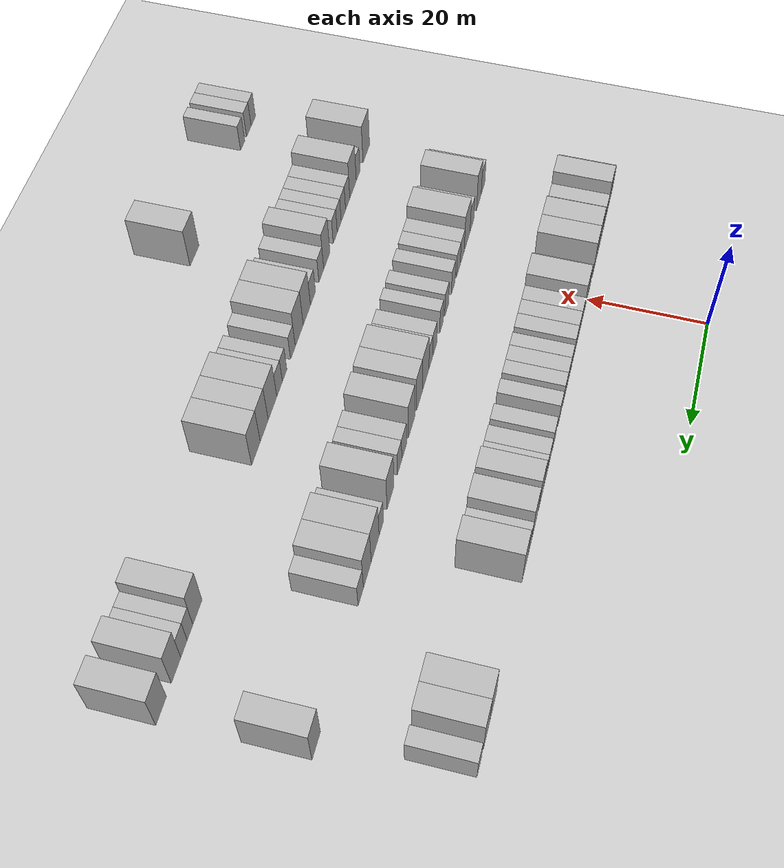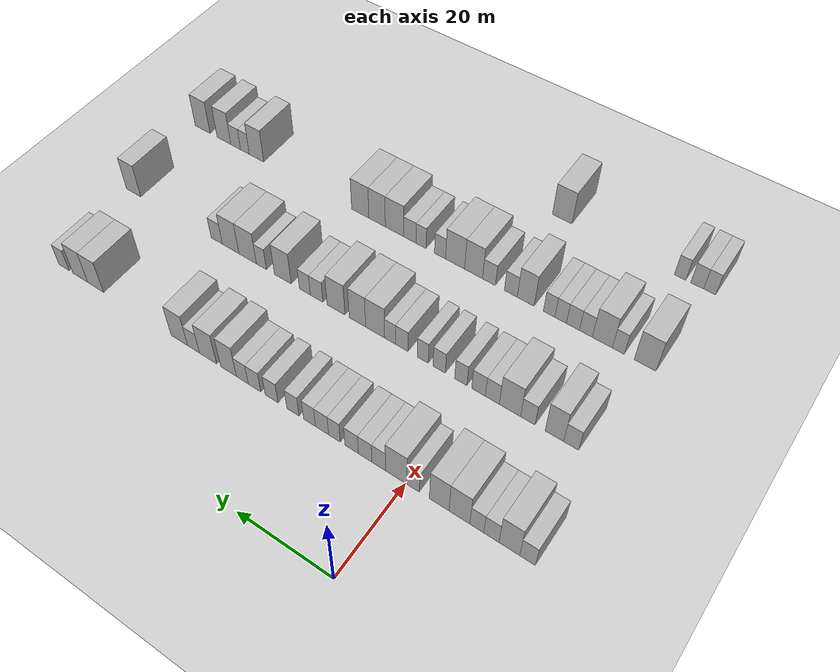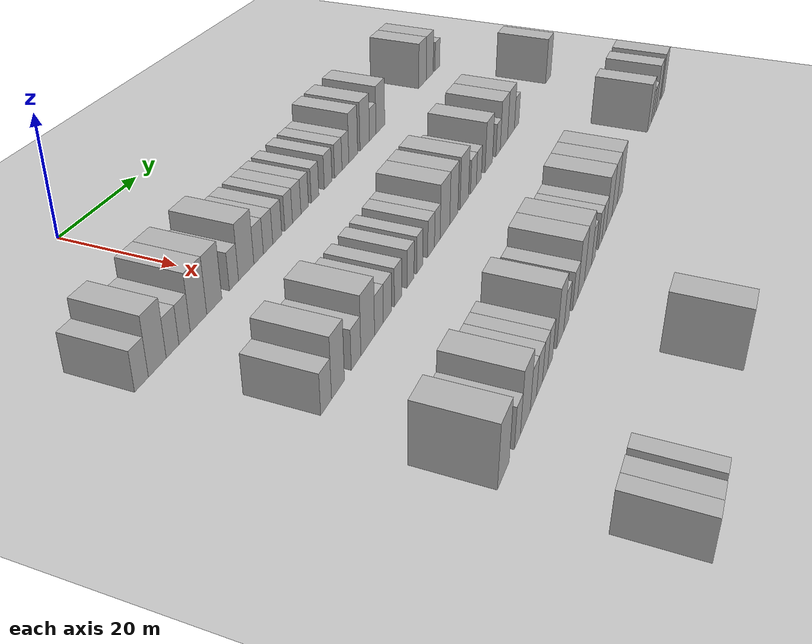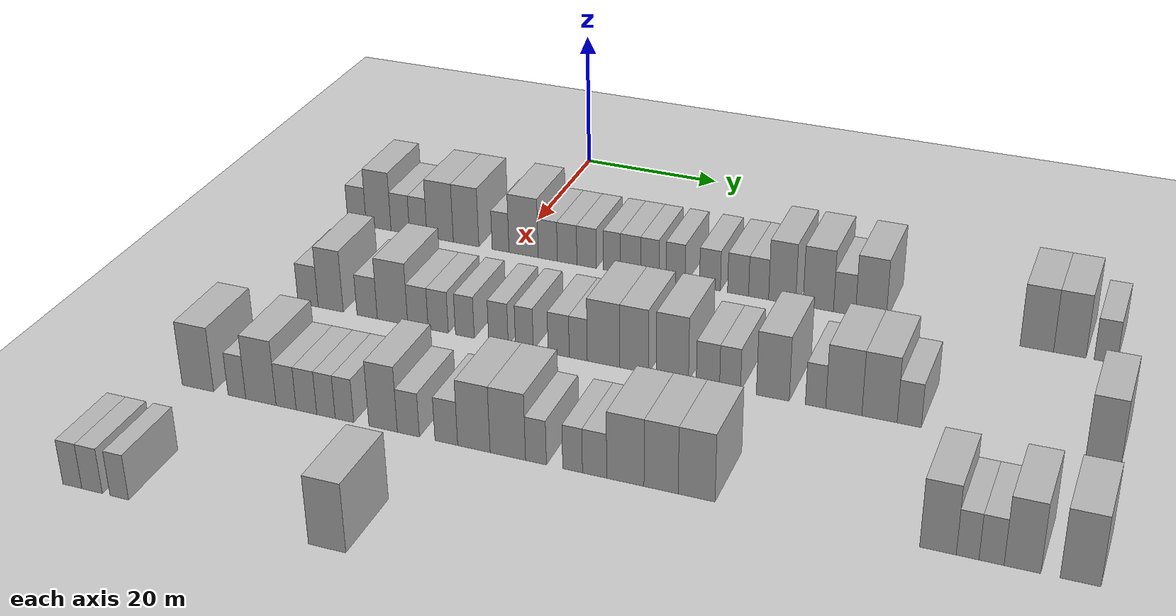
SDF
<sdf version="1.6">
 <world name="default">
  <include><name>ground_plane_1</name><uri>model://HANNAS_ground_plane</uri></include>
  <model name="building_90">
   <static>1</static>
   <pose>25.0000 -23.5446 0 0.000000 0.000000 0.000000</pose>
   <link name="link">
    <pose>0 0 3.00 0 0 0</pose>
    <collision name="collision"><geometry><box><size>10.0000 2.8933 6.0000</size></box></geometry></collision>
    <visual name="visual">
     <cast_shadows>0</cast_shadows>
     <geometry><box><size>10.0000 2.8933 6.0000</size></box></geometry>
     <material>
      <script>
       <uri>model://HANNAS_wall/materials/scripts</uri>
       <uri>model://HANNAS_wall/materials/textures</uri>
       <name>vrc/HANNAS_wall</name>
      </script>
     </material>
    </visual>
   </link>
  </model>
  <model name="building_91">
   <static>1</static>
   <pose>25.0000 -20.1573 0 0.000000 0.000000 0.000000</pose>
   <link name="link">
    <pose>0 0 4.50 0 0 0</pose>
    <collision name="collision"><geometry><box><size>10.0000 3.8812 9.0000</size></box></geometry></collision>
    <visual name="visual">
     <cast_shadows>0</cast_shadows>
     <geometry><box><size>10.0000 3.8812 9.0000</size></box></geometry>
     <material>
      <script>
       <uri>model://HANNAS_wall/materials/scripts</uri>
       <uri>model://HANNAS_wall/materials/textures</uri>
       <name>vrc/HANNAS_wall</name>
      </script>
     </material>
    </visual>
   </link>
  </model>
  <model name="building_92">
   <static>1</static>
   <pose>25.0000 -16.7781 0 0.000000 0.000000 0.000000</pose>
   <link name="link">
    <pose>0 0 3.00 0 0 0</pose>
    <collision name="collision"><geometry><box><size>10.0000 2.8771 6.0000</size></box></geometry></collision>
    <visual name="visual">
     <cast_shadows>0</cast_shadows>
     <geometry><box><size>10.0000 2.8771 6.0000</size></box></geometry>
     <material>
      <script>
       <uri>model://HANNAS_wall/materials/scripts</uri>
       <uri>model://HANNAS_wall/materials/textures</uri>
       <name>vrc/HANNAS_wall</name>
      </script>
     </material>
    </visual>
   </link>
  </model>
  <model name="building_93">
   <static>1</static>
   <pose>25.0000 -13.9975 0 0.000000 0.000000 0.000000</pose>
   <link name="link">
    <pose>0 0 3.00 0 0 0</pose>
    <collision name="collision"><geometry><box><size>10.0000 2.6841 6.0000</size></box></geometry></collision>
    <visual name="visual">
     <cast_shadows>0</cast_shadows>
     <geometry><box><size>10.0000 2.6841 6.0000</size></box></geometry>
     <material>
      <script>
       <uri>model://HANNAS_wall/materials/scripts</uri>
       <uri>model://HANNAS_wall/materials/textures</uri>
       <name>vrc/HANNAS_wall</name>
      </script>
     </material>
    </visual>
   </link>
  </model>
  <model name="building_94">
   <static>1</static>
   <pose>25.0000 -10.6313 0 0.000000 0.000000 0.000000</pose>
   <link name="link">
    <pose>0 0 4.50 0 0 0</pose>
    <collision name="collision"><geometry><box><size>10.0000 4.0483 9.0000</size></box></geometry></collision>
    <visual name="visual">
     <cast_shadows>0</cast_shadows>
     <geometry><box><size>10.0000 4.0483 9.0000</size></box></geometry>
     <material>
      <script>
       <uri>model://HANNAS_wall/materials/scripts</uri>
       <uri>model://HANNAS_wall/materials/textures</uri>
       <name>vrc/HANNAS_wall</name>
      </script>
     </material>
    </visual>
   </link>
  </model>
  <model name="building_95">
   <static>1</static>
   <pose>25.0000 -6.6675 0 0.000000 0.000000 0.000000</pose>
   <link name="link">
    <pose>0 0 4.50 0 0 0</pose>
    <collision name="collision"><geometry><box><size>10.0000 3.8792 9.0000</size></box></geometry></collision>
    <visual name="visual">
     <cast_shadows>0</cast_shadows>
     <geometry><box><size>10.0000 3.8792 9.0000</size></box></geometry>
     <material>
      <script>
       <uri>model://HANNAS_wall/materials/scripts</uri>
       <uri>model://HANNAS_wall/materials/textures</uri>
       <name>vrc/HANNAS_wall</name>
      </script>
     </material>
    </visual>
   </link>
  </model>
  <model name="building_96">
   <static>1</static>
   <pose>25.0000 -1.4679 0 0.000000 0.000000 0.000000</pose>
   <link name="link">
    <pose>0 0 3.00 0 0 0</pose>
    <collision name="collision"><geometry><box><size>10.0000 2.5201 6.0000</size></box></geometry></collision>
    <visual name="visual">
     <cast_shadows>0</cast_shadows>
     <geometry><box><size>10.0000 2.5201 6.0000</size></box></geometry>
     <material>
      <script>
       <uri>model://HANNAS_wall/materials/scripts</uri>
       <uri>model://HANNAS_wall/materials/textures</uri>
       <name>vrc/HANNAS_wall</name>
      </script>
     </material>
    </visual>
   </link>
  </model>
  <model name="building_97">
   <static>1</static>
   <pose>25.0000 1.9667 0 0.000000 0.000000 0.000000</pose>
   <link name="link">
    <pose>0 0 4.50 0 0 0</pose>
    <collision name="collision"><geometry><box><size>10.0000 4.3492 9.0000</size></box></geometry></collision>
    <visual name="visual">
     <cast_shadows>0</cast_shadows>
     <geometry><box><size>10.0000 4.3492 9.0000</size></box></geometry>
     <material>
      <script>
       <uri>model://HANNAS_wall/materials/scripts</uri>
       <uri>model://HANNAS_wall/materials/textures</uri>
       <name>vrc/HANNAS_wall</name>
      </script>
     </material>
    </visual>
   </link>
  </model>
  <model name="building_98">
   <static>1</static>
   <pose>25.0000 5.5526 0 0.000000 0.000000 0.000000</pose>
   <link name="link">
    <pose>0 0 3.00 0 0 0</pose>
    <collision name="collision"><geometry><box><size>10.0000 2.8225 6.0000</size></box></geometry></collision>
    <visual name="visual">
     <cast_shadows>0</cast_shadows>
     <geometry><box><size>10.0000 2.8225 6.0000</size></box></geometry>
     <material>
      <script>
       <uri>model://HANNAS_wall/materials/scripts</uri>
       <uri>model://HANNAS_wall/materials/textures</uri>
       <name>vrc/HANNAS_wall</name>
      </script>
     </material>
    </visual>
   </link>
  </model>
  <model name="building_99">
   <static>1</static>
   <pose>25.0000 8.3953 0 0.000000 0.000000 0.000000</pose>
   <link name="link">
    <pose>0 0 3.00 0 0 0</pose>
    <collision name="collision"><geometry><box><size>10.0000 2.8630 6.0000</size></box></geometry></collision>
    <visual name="visual">
     <cast_shadows>0</cast_shadows>
     <geometry><box><size>10.0000 2.8630 6.0000</size></box></geometry>
     <material>
      <script>
       <uri>model://HANNAS_wall/materials/scripts</uri>
       <uri>model://HANNAS_wall/materials/textures</uri>
       <name>vrc/HANNAS_wall</name>
      </script>
     </material>
    </visual>
   </link>
  </model>
  <model name="building_100">
   <static>1</static>
   <pose>25.0000 11.2444 0 0.000000 0.000000 0.000000</pose>
   <link name="link">
    <pose>0 0 3.00 0 0 0</pose>
    <collision name="collision"><geometry><box><size>10.0000 2.8353 6.0000</size></box></geometry></collision>
    <visual name="visual">
     <cast_shadows>0</cast_shadows>
     <geometry><box><size>10.0000 2.8353 6.0000</size></box></geometry>
     <material>
      <script>
       <uri>model://HANNAS_wall/materials/scripts</uri>
       <uri>model://HANNAS_wall/materials/textures</uri>
       <name>vrc/HANNAS_wall</name>
      </script>
     </material>
    </visual>
   </link>
  </model>
  <model name="building_101">
   <static>1</static>
   <pose>25.0000 14.9084 0 0.000000 0.000000 0.000000</pose>
   <link name="link">
    <pose>0 0 3.00 0 0 0</pose>
    <collision name="collision"><geometry><box><size>10.0000 2.4927 6.0000</size></box></geometry></collision>
    <visual name="visual">
     <cast_shadows>0</cast_shadows>
     <geometry><box><size>10.0000 2.4927 6.0000</size></box></geometry>
     <material>
      <script>
       <uri>model://HANNAS_wall/materials/scripts</uri>
       <uri>model://HANNAS_wall/materials/textures</uri>
       <name>vrc/HANNAS_wall</name>
      </script>
     </material>
    </visual>
   </link>
  </model>
  <model name="building_102">
   <static>1</static>
   <pose>25.0000 17.5866 0 0.000000 0.000000 0.000000</pose>
   <link name="link">
    <pose>0 0 3.00 0 0 0</pose>
    <collision name="collision"><geometry><box><size>10.0000 2.8636 6.0000</size></box></geometry></collision>
    <visual name="visual">
     <cast_shadows>0</cast_shadows>
     <geometry><box><size>10.0000 2.8636 6.0000</size></box></geometry>
     <material>
      <script>
       <uri>model://HANNAS_wall/materials/scripts</uri>
       <uri>model://HANNAS_wall/materials/textures</uri>
       <name>vrc/HANNAS_wall</name>
      </script>
     </material>
    </visual>
   </link>
  </model>
  <model name="building_103">
   <static>1</static>
   <pose>25.0000 20.3215 0 0.000000 0.000000 0.000000</pose>
   <link name="link">
    <pose>0 0 3.00 0 0 0</pose>
    <collision name="collision"><geometry><box><size>10.0000 2.6062 6.0000</size></box></geometry></collision>
    <visual name="visual">
     <cast_shadows>0</cast_shadows>
     <geometry><box><size>10.0000 2.6062 6.0000</size></box></geometry>
     <material>
      <script>
       <uri>model://HANNAS_wall/materials/scripts</uri>
       <uri>model://HANNAS_wall/materials/textures</uri>
       <name>vrc/HANNAS_wall</name>
      </script>
     </material>
    </visual>
   </link>
  </model>
  <model name="building_104">
   <static>1</static>
   <pose>25.0000 23.9805 0 0.000000 0.000000 0.000000</pose>
   <link name="link">
    <pose>0 0 3.00 0 0 0</pose>
    <collision name="collision"><geometry><box><size>10.0000 2.7118 6.0000</size></box></geometry></collision>
    <visual name="visual">
     <cast_shadows>0</cast_shadows>
     <geometry><box><size>10.0000 2.7118 6.0000</size></box></geometry>
     <material>
      <script>
       <uri>model://HANNAS_wall/materials/scripts</uri>
       <uri>model://HANNAS_wall/materials/textures</uri>
       <name>vrc/HANNAS_wall</name>
      </script>
     </material>
    </visual>
   </link>
  </model>
  <model name="building_105">
   <static>1</static>
   <pose>25.0000 28.7900 0 0.000000 0.000000 0.000000</pose>
   <link name="link">
    <pose>0 0 3.00 0 0 0</pose>
    <collision name="collision"><geometry><box><size>10.0000 2.9071 6.0000</size></box></geometry></collision>
    <visual name="visual">
     <cast_shadows>0</cast_shadows>
     <geometry><box><size>10.0000 2.9071 6.0000</size></box></geometry>
     <material>
      <script>
       <uri>model://HANNAS_wall/materials/scripts</uri>
       <uri>model://HANNAS_wall/materials/textures</uri>
       <name>vrc/HANNAS_wall</name>
      </script>
     </material>
    </visual>
   </link>
  </model>
  <model name="building_106">
   <static>1</static>
   <pose>25.0000 32.6927 0 0.000000 0.000000 0.000000</pose>
   <link name="link">
    <pose>0 0 3.00 0 0 0</pose>
    <collision name="collision"><geometry><box><size>10.0000 2.8984 6.0000</size></box></geometry></collision>
    <visual name="visual">
     <cast_shadows>0</cast_shadows>
     <geometry><box><size>10.0000 2.8984 6.0000</size></box></geometry>
     <material>
      <script>
       <uri>model://HANNAS_wall/materials/scripts</uri>
       <uri>model://HANNAS_wall/materials/textures</uri>
       <name>vrc/HANNAS_wall</name>
      </script>
     </material>
    </visual>
   </link>
  </model>
  <model name="building_107">
   <static>1</static>
   <pose>25.0000 35.5156 0 0.000000 0.000000 0.000000</pose>
   <link name="link">
    <pose>0 0 3.00 0 0 0</pose>
    <collision name="collision"><geometry><box><size>10.0000 2.7473 6.0000</size></box></geometry></collision>
    <visual name="visual">
     <cast_shadows>0</cast_shadows>
     <geometry><box><size>10.0000 2.7473 6.0000</size></box></geometry>
     <material>
      <script>
       <uri>model://HANNAS_wall/materials/scripts</uri>
       <uri>model://HANNAS_wall/materials/textures</uri>
       <name>vrc/HANNAS_wall</name>
      </script>
     </material>
    </visual>
   </link>
  </model>
  <model name="building_108">
   <static>1</static>
   <pose>25.0000 38.7228 0 0.000000 0.000000 0.000000</pose>
   <link name="link">
    <pose>0 0 4.50 0 0 0</pose>
    <collision name="collision"><geometry><box><size>10.0000 3.6671 9.0000</size></box></geometry></collision>
    <visual name="visual">
     <cast_shadows>0</cast_shadows>
     <geometry><box><size>10.0000 3.6671 9.0000</size></box></geometry>
     <material>
      <script>
       <uri>model://HANNAS_wall/materials/scripts</uri>
       <uri>model://HANNAS_wall/materials/textures</uri>
       <name>vrc/HANNAS_wall</name>
      </script>
     </material>
    </visual>
   </link>
  </model>
  <model name="building_109">
   <static>1</static>
   <pose>25.0000 43.6012 0 0.000000 0.000000 0.000000</pose>
   <link name="link">
    <pose>0 0 4.50 0 0 0</pose>
    <collision name="collision"><geometry><box><size>10.0000 4.0897 9.0000</size></box></geometry></collision>
    <visual name="visual">
     <cast_shadows>0</cast_shadows>
     <geometry><box><size>10.0000 4.0897 9.0000</size></box></geometry>
     <material>
      <script>
       <uri>model://HANNAS_wall/materials/scripts</uri>
       <uri>model://HANNAS_wall/materials/textures</uri>
       <name>vrc/HANNAS_wall</name>
      </script>
     </material>
    </visual>
   </link>
  </model>
  <model name="building_110">
   <static>1</static>
   <pose>25.0000 47.1055 0 0.000000 0.000000 0.000000</pose>
   <link name="link">
    <pose>0 0 3.00 0 0 0</pose>
    <collision name="collision"><geometry><box><size>10.0000 2.9191 6.0000</size></box></geometry></collision>
    <visual name="visual">
     <cast_shadows>0</cast_shadows>
     <geometry><box><size>10.0000 2.9191 6.0000</size></box></geometry>
     <material>
      <script>
       <uri>model://HANNAS_wall/materials/scripts</uri>
       <uri>model://HANNAS_wall/materials/textures</uri>
       <name>vrc/HANNAS_wall</name>
      </script>
     </material>
    </visual>
   </link>
  </model>
  <model name="building_111">
   <static>1</static>
   <pose>25.0000 50.5919 0 0.000000 0.000000 0.000000</pose>
   <link name="link">
    <pose>0 0 4.50 0 0 0</pose>
    <collision name="collision"><geometry><box><size>10.0000 4.0537 9.0000</size></box></geometry></collision>
    <visual name="visual">
     <cast_shadows>0</cast_shadows>
     <geometry><box><size>10.0000 4.0537 9.0000</size></box></geometry>
     <material>
      <script>
       <uri>model://HANNAS_wall/materials/scripts</uri>
       <uri>model://HANNAS_wall/materials/textures</uri>
       <name>vrc/HANNAS_wall</name>
      </script>
     </material>
    </visual>
   </link>
  </model>
  <model name="building_112">
   <static>1</static>
   <pose>25.0000 71.9134 0 0.000000 0.000000 0.000000</pose>
   <link name="link">
    <pose>0 0 4.50 0 0 0</pose>
    <collision name="collision"><geometry><box><size>10.0000 4.1964 9.0000</size></box></geometry></collision>
    <visual name="visual">
     <cast_shadows>0</cast_shadows>
     <geometry><box><size>10.0000 4.1964 9.0000</size></box></geometry>
     <material>
      <script>
       <uri>model://HANNAS_wall/materials/scripts</uri>
       <uri>model://HANNAS_wall/materials/textures</uri>
       <name>vrc/HANNAS_wall</name>
      </script>
     </material>
    </visual>
   </link>
  </model>
  <model name="building_113">
   <static>1</static>
   <pose>25.0000 76.0172 0 0.000000 0.000000 0.000000</pose>
   <link name="link">
    <pose>0 0 4.50 0 0 0</pose>
    <collision name="collision"><geometry><box><size>10.0000 4.0112 9.0000</size></box></geometry></collision>
    <visual name="visual">
     <cast_shadows>0</cast_shadows>
     <geometry><box><size>10.0000 4.0112 9.0000</size></box></geometry>
     <material>
      <script>
       <uri>model://HANNAS_wall/materials/scripts</uri>
       <uri>model://HANNAS_wall/materials/textures</uri>
       <name>vrc/HANNAS_wall</name>
      </script>
     </material>
    </visual>
   </link>
  </model>
  <model name="building_114">
   <static>1</static>
   <pose>25.0000 80.4273 0 0.000000 0.000000 0.000000</pose>
   <link name="link">
    <pose>0 0 3.00 0 0 0</pose>
    <collision name="collision"><geometry><box><size>10.0000 2.8089 6.0000</size></box></geometry></collision>
    <visual name="visual">
     <cast_shadows>0</cast_shadows>
     <geometry><box><size>10.0000 2.8089 6.0000</size></box></geometry>
     <material>
      <script>
       <uri>model://HANNAS_wall/materials/scripts</uri>
       <uri>model://HANNAS_wall/materials/textures</uri>
       <name>vrc/HANNAS_wall</name>
      </script>
     </material>
    </visual>
   </link>
  </model>
  <model name="building_279">
   <static>1</static>
   <pose>47.0000 -19.2236 0 0.000000 0.000000 0.000000</pose>
   <link name="link">
    <pose>0 0 3.00 0 0 0</pose>
    <collision name="collision"><geometry><box><size>10.0000 2.9540 6.0000</size></box></geometry></collision>
    <visual name="visual">
     <cast_shadows>0</cast_shadows>
     <geometry><box><size>10.0000 2.9540 6.0000</size></box></geometry>
     <material>
      <script>
       <uri>model://HANNAS_wall/materials/scripts</uri>
       <uri>model://HANNAS_wall/materials/textures</uri>
       <name>vrc/HANNAS_wall</name>
      </script>
     </material>
    </visual>
   </link>
  </model>
  <model name="building_280">
   <static>1</static>
   <pose>47.0000 -15.9154 0 0.000000 0.000000 0.000000</pose>
   <link name="link">
    <pose>0 0 4.50 0 0 0</pose>
    <collision name="collision"><geometry><box><size>10.0000 3.6624 9.0000</size></box></geometry></collision>
    <visual name="visual">
     <cast_shadows>0</cast_shadows>
     <geometry><box><size>10.0000 3.6624 9.0000</size></box></geometry>
     <material>
      <script>
       <uri>model://HANNAS_wall/materials/scripts</uri>
       <uri>model://HANNAS_wall/materials/textures</uri>
       <name>vrc/HANNAS_wall</name>
      </script>
     </material>
    </visual>
   </link>
  </model>
  <model name="building_281">
   <static>1</static>
   <pose>47.0000 -10.6184 0 0.000000 0.000000 0.000000</pose>
   <link name="link">
    <pose>0 0 3.00 0 0 0</pose>
    <collision name="collision"><geometry><box><size>10.0000 2.9316 6.0000</size></box></geometry></collision>
    <visual name="visual">
     <cast_shadows>0</cast_shadows>
     <geometry><box><size>10.0000 2.9316 6.0000</size></box></geometry>
     <material>
      <script>
       <uri>model://HANNAS_wall/materials/scripts</uri>
       <uri>model://HANNAS_wall/materials/textures</uri>
       <name>vrc/HANNAS_wall</name>
      </script>
     </material>
    </visual>
   </link>
  </model>
  <model name="building_282">
   <static>1</static>
   <pose>47.0000 -6.9768 0 0.000000 0.000000 0.000000</pose>
   <link name="link">
    <pose>0 0 4.50 0 0 0</pose>
    <collision name="collision"><geometry><box><size>10.0000 4.3516 9.0000</size></box></geometry></collision>
    <visual name="visual">
     <cast_shadows>0</cast_shadows>
     <geometry><box><size>10.0000 4.3516 9.0000</size></box></geometry>
     <material>
      <script>
       <uri>model://HANNAS_wall/materials/scripts</uri>
       <uri>model://HANNAS_wall/materials/textures</uri>
       <name>vrc/HANNAS_wall</name>
      </script>
     </material>
    </visual>
   </link>
  </model>
  <model name="building_283">
   <static>1</static>
   <pose>47.0000 -3.3523 0 0.000000 0.000000 0.000000</pose>
   <link name="link">
    <pose>0 0 3.00 0 0 0</pose>
    <collision name="collision"><geometry><box><size>10.0000 2.8975 6.0000</size></box></geometry></collision>
    <visual name="visual">
     <cast_shadows>0</cast_shadows>
     <geometry><box><size>10.0000 2.8975 6.0000</size></box></geometry>
     <material>
      <script>
       <uri>model://HANNAS_wall/materials/scripts</uri>
       <uri>model://HANNAS_wall/materials/textures</uri>
       <name>vrc/HANNAS_wall</name>
      </script>
     </material>
    </visual>
   </link>
  </model>
  <model name="building_284">
   <static>1</static>
   <pose>47.0000 -0.4868 0 0.000000 0.000000 0.000000</pose>
   <link name="link">
    <pose>0 0 3.00 0 0 0</pose>
    <collision name="collision"><geometry><box><size>10.0000 2.8335 6.0000</size></box></geometry></collision>
    <visual name="visual">
     <cast_shadows>0</cast_shadows>
     <geometry><box><size>10.0000 2.8335 6.0000</size></box></geometry>
     <material>
      <script>
       <uri>model://HANNAS_wall/materials/scripts</uri>
       <uri>model://HANNAS_wall/materials/textures</uri>
       <name>vrc/HANNAS_wall</name>
      </script>
     </material>
    </visual>
   </link>
  </model>
  <model name="building_285">
   <static>1</static>
   <pose>47.0000 3.2384 0 0.000000 0.000000 0.000000</pose>
   <link name="link">
    <pose>0 0 3.00 0 0 0</pose>
    <collision name="collision"><geometry><box><size>10.0000 2.6170 6.0000</size></box></geometry></collision>
    <visual name="visual">
     <cast_shadows>0</cast_shadows>
     <geometry><box><size>10.0000 2.6170 6.0000</size></box></geometry>
     <material>
      <script>
       <uri>model://HANNAS_wall/materials/scripts</uri>
       <uri>model://HANNAS_wall/materials/textures</uri>
       <name>vrc/HANNAS_wall</name>
      </script>
     </material>
    </visual>
   </link>
  </model>
  <model name="building_286">
   <static>1</static>
   <pose>47.0000 7.8902 0 0.000000 0.000000 0.000000</pose>
   <link name="link">
    <pose>0 0 3.00 0 0 0</pose>
    <collision name="collision"><geometry><box><size>10.0000 2.6865 6.0000</size></box></geometry></collision>
    <visual name="visual">
     <cast_shadows>0</cast_shadows>
     <geometry><box><size>10.0000 2.6865 6.0000</size></box></geometry>
     <material>
      <script>
       <uri>model://HANNAS_wall/materials/scripts</uri>
       <uri>model://HANNAS_wall/materials/textures</uri>
       <name>vrc/HANNAS_wall</name>
      </script>
     </material>
    </visual>
   </link>
  </model>
  <model name="building_287">
   <static>1</static>
   <pose>47.0000 11.4489 0 0.000000 0.000000 0.000000</pose>
   <link name="link">
    <pose>0 0 3.00 0 0 0</pose>
    <collision name="collision"><geometry><box><size>10.0000 2.4309 6.0000</size></box></geometry></collision>
    <visual name="visual">
     <cast_shadows>0</cast_shadows>
     <geometry><box><size>10.0000 2.4309 6.0000</size></box></geometry>
     <material>
      <script>
       <uri>model://HANNAS_wall/materials/scripts</uri>
       <uri>model://HANNAS_wall/materials/textures</uri>
       <name>vrc/HANNAS_wall</name>
      </script>
     </material>
    </visual>
   </link>
  </model>
  <model name="building_288">
   <static>1</static>
   <pose>47.0000 16.0870 0 0.000000 0.000000 0.000000</pose>
   <link name="link">
    <pose>0 0 3.00 0 0 0</pose>
    <collision name="collision"><geometry><box><size>10.0000 2.8452 6.0000</size></box></geometry></collision>
    <visual name="visual">
     <cast_shadows>0</cast_shadows>
     <geometry><box><size>10.0000 2.8452 6.0000</size></box></geometry>
     <material>
      <script>
       <uri>model://HANNAS_wall/materials/scripts</uri>
       <uri>model://HANNAS_wall/materials/textures</uri>
       <name>vrc/HANNAS_wall</name>
      </script>
     </material>
    </visual>
   </link>
  </model>
  <model name="building_289">
   <static>1</static>
   <pose>47.0000 18.7150 0 0.000000 0.000000 0.000000</pose>
   <link name="link">
    <pose>0 0 3.00 0 0 0</pose>
    <collision name="collision"><geometry><box><size>10.0000 2.4107 6.0000</size></box></geometry></collision>
    <visual name="visual">
     <cast_shadows>0</cast_shadows>
     <geometry><box><size>10.0000 2.4107 6.0000</size></box></geometry>
     <material>
      <script>
       <uri>model://HANNAS_wall/materials/scripts</uri>
       <uri>model://HANNAS_wall/materials/textures</uri>
       <name>vrc/HANNAS_wall</name>
      </script>
     </material>
    </visual>
   </link>
  </model>
  <model name="building_290">
   <static>1</static>
   <pose>47.0000 22.0694 0 0.000000 0.000000 0.000000</pose>
   <link name="link">
    <pose>0 0 4.50 0 0 0</pose>
    <collision name="collision"><geometry><box><size>10.0000 4.2982 9.0000</size></box></geometry></collision>
    <visual name="visual">
     <cast_shadows>0</cast_shadows>
     <geometry><box><size>10.0000 4.2982 9.0000</size></box></geometry>
     <material>
      <script>
       <uri>model://HANNAS_wall/materials/scripts</uri>
       <uri>model://HANNAS_wall/materials/textures</uri>
       <name>vrc/HANNAS_wall</name>
      </script>
     </material>
    </visual>
   </link>
  </model>
  <model name="building_291">
   <static>1</static>
   <pose>47.0000 26.1158 0 0.000000 0.000000 0.000000</pose>
   <link name="link">
    <pose>0 0 4.50 0 0 0</pose>
    <collision name="collision"><geometry><box><size>10.0000 3.7945 9.0000</size></box></geometry></collision>
    <visual name="visual">
     <cast_shadows>0</cast_shadows>
     <geometry><box><size>10.0000 3.7945 9.0000</size></box></geometry>
     <material>
      <script>
       <uri>model://HANNAS_wall/materials/scripts</uri>
       <uri>model://HANNAS_wall/materials/textures</uri>
       <name>vrc/HANNAS_wall</name>
      </script>
     </material>
    </visual>
   </link>
  </model>
  <model name="building_292">
   <static>1</static>
   <pose>47.0000 31.0976 0 0.000000 0.000000 0.000000</pose>
   <link name="link">
    <pose>0 0 4.50 0 0 0</pose>
    <collision name="collision"><geometry><box><size>10.0000 4.1691 9.0000</size></box></geometry></collision>
    <visual name="visual">
     <cast_shadows>0</cast_shadows>
     <geometry><box><size>10.0000 4.1691 9.0000</size></box></geometry>
     <material>
      <script>
       <uri>model://HANNAS_wall/materials/scripts</uri>
       <uri>model://HANNAS_wall/materials/textures</uri>
       <name>vrc/HANNAS_wall</name>
      </script>
     </material>
    </visual>
   </link>
  </model>
  <model name="building_293">
   <static>1</static>
   <pose>47.0000 35.6731 0 0.000000 0.000000 0.000000</pose>
   <link name="link">
    <pose>0 0 3.00 0 0 0</pose>
    <collision name="collision"><geometry><box><size>10.0000 2.9821 6.0000</size></box></geometry></collision>
    <visual name="visual">
     <cast_shadows>0</cast_shadows>
     <geometry><box><size>10.0000 2.9821 6.0000</size></box></geometry>
     <material>
      <script>
       <uri>model://HANNAS_wall/materials/scripts</uri>
       <uri>model://HANNAS_wall/materials/textures</uri>
       <name>vrc/HANNAS_wall</name>
      </script>
     </material>
    </visual>
   </link>
  </model>
  <model name="building_294">
   <static>1</static>
   <pose>47.0000 38.4921 0 0.000000 0.000000 0.000000</pose>
   <link name="link">
    <pose>0 0 3.00 0 0 0</pose>
    <collision name="collision"><geometry><box><size>10.0000 2.6558 6.0000</size></box></geometry></collision>
    <visual name="visual">
     <cast_shadows>0</cast_shadows>
     <geometry><box><size>10.0000 2.6558 6.0000</size></box></geometry>
     <material>
      <script>
       <uri>model://HANNAS_wall/materials/scripts</uri>
       <uri>model://HANNAS_wall/materials/textures</uri>
       <name>vrc/HANNAS_wall</name>
      </script>
     </material>
    </visual>
   </link>
  </model>
  <model name="building_295">
   <static>1</static>
   <pose>47.0000 43.8760 0 0.000000 0.000000 0.000000</pose>
   <link name="link">
    <pose>0 0 4.50 0 0 0</pose>
    <collision name="collision"><geometry><box><size>10.0000 4.1121 9.0000</size></box></geometry></collision>
    <visual name="visual">
     <cast_shadows>0</cast_shadows>
     <geometry><box><size>10.0000 4.1121 9.0000</size></box></geometry>
     <material>
      <script>
       <uri>model://HANNAS_wall/materials/scripts</uri>
       <uri>model://HANNAS_wall/materials/textures</uri>
       <name>vrc/HANNAS_wall</name>
      </script>
     </material>
    </visual>
   </link>
  </model>
  <model name="building_296">
   <static>1</static>
   <pose>47.0000 49.1877 0 0.000000 0.000000 0.000000</pose>
   <link name="link">
    <pose>0 0 3.00 0 0 0</pose>
    <collision name="collision"><geometry><box><size>10.0000 2.5113 6.0000</size></box></geometry></collision>
    <visual name="visual">
     <cast_shadows>0</cast_shadows>
     <geometry><box><size>10.0000 2.5113 6.0000</size></box></geometry>
     <material>
      <script>
       <uri>model://HANNAS_wall/materials/scripts</uri>
       <uri>model://HANNAS_wall/materials/textures</uri>
       <name>vrc/HANNAS_wall</name>
      </script>
     </material>
    </visual>
   </link>
  </model>
  <model name="building_297">
   <static>1</static>
   <pose>47.0000 52.6473 0 0.000000 0.000000 0.000000</pose>
   <link name="link">
    <pose>0 0 4.50 0 0 0</pose>
    <collision name="collision"><geometry><box><size>10.0000 4.4078 9.0000</size></box></geometry></collision>
    <visual name="visual">
     <cast_shadows>0</cast_shadows>
     <geometry><box><size>10.0000 4.4078 9.0000</size></box></geometry>
     <material>
      <script>
       <uri>model://HANNAS_wall/materials/scripts</uri>
       <uri>model://HANNAS_wall/materials/textures</uri>
       <name>vrc/HANNAS_wall</name>
      </script>
     </material>
    </visual>
   </link>
  </model>
  <model name="building_298">
   <static>1</static>
   <pose>47.0000 56.9803 0 0.000000 0.000000 0.000000</pose>
   <link name="link">
    <pose>0 0 4.50 0 0 0</pose>
    <collision name="collision"><geometry><box><size>10.0000 4.2582 9.0000</size></box></geometry></collision>
    <visual name="visual">
     <cast_shadows>0</cast_shadows>
     <geometry><box><size>10.0000 4.2582 9.0000</size></box></geometry>
     <material>
      <script>
       <uri>model://HANNAS_wall/materials/scripts</uri>
       <uri>model://HANNAS_wall/materials/textures</uri>
       <name>vrc/HANNAS_wall</name>
      </script>
     </material>
    </visual>
   </link>
  </model>
  <model name="building_299">
   <static>1</static>
   <pose>47.0000 60.5583 0 0.000000 0.000000 0.000000</pose>
   <link name="link">
    <pose>0 0 3.00 0 0 0</pose>
    <collision name="collision"><geometry><box><size>10.0000 2.8978 6.0000</size></box></geometry></collision>
    <visual name="visual">
     <cast_shadows>0</cast_shadows>
     <geometry><box><size>10.0000 2.8978 6.0000</size></box></geometry>
     <material>
      <script>
       <uri>model://HANNAS_wall/materials/scripts</uri>
       <uri>model://HANNAS_wall/materials/textures</uri>
       <name>vrc/HANNAS_wall</name>
      </script>
     </material>
    </visual>
   </link>
  </model>
  <model name="building_300">
   <static>1</static>
   <pose>47.0000 82.9995 0 0.000000 0.000000 0.000000</pose>
   <link name="link">
    <pose>0 0 4.50 0 0 0</pose>
    <collision name="collision"><geometry><box><size>10.0000 3.9948 9.0000</size></box></geometry></collision>
    <visual name="visual">
     <cast_shadows>0</cast_shadows>
     <geometry><box><size>10.0000 3.9948 9.0000</size></box></geometry>
     <material>
      <script>
       <uri>model://HANNAS_wall/materials/scripts</uri>
       <uri>model://HANNAS_wall/materials/textures</uri>
       <name>vrc/HANNAS_wall</name>
      </script>
     </material>
    </visual>
   </link>
  </model>
  <model name="building_460">
   <static>1</static>
   <pose>69.0000 -22.1935 0 0.000000 0.000000 0.000000</pose>
   <link name="link">
    <pose>0 0 4.50 0 0 0</pose>
    <collision name="collision"><geometry><box><size>10.0000 4.3882 9.0000</size></box></geometry></collision>
    <visual name="visual">
     <cast_shadows>0</cast_shadows>
     <geometry><box><size>10.0000 4.3882 9.0000</size></box></geometry>
     <material>
      <script>
       <uri>model://HANNAS_wall/materials/scripts</uri>
       <uri>model://HANNAS_wall/materials/textures</uri>
       <name>vrc/HANNAS_wall</name>
      </script>
     </material>
    </visual>
   </link>
  </model>
  <model name="building_461">
   <static>1</static>
   <pose>69.0000 -16.7831 0 0.000000 0.000000 0.000000</pose>
   <link name="link">
    <pose>0 0 3.00 0 0 0</pose>
    <collision name="collision"><geometry><box><size>10.0000 2.4325 6.0000</size></box></geometry></collision>
    <visual name="visual">
     <cast_shadows>0</cast_shadows>
     <geometry><box><size>10.0000 2.4325 6.0000</size></box></geometry>
     <material>
      <script>
       <uri>model://HANNAS_wall/materials/scripts</uri>
       <uri>model://HANNAS_wall/materials/textures</uri>
       <name>vrc/HANNAS_wall</name>
      </script>
     </material>
    </visual>
   </link>
  </model>
  <model name="building_462">
   <static>1</static>
   <pose>69.0000 -13.4938 0 0.000000 0.000000 0.000000</pose>
   <link name="link">
    <pose>0 0 4.50 0 0 0</pose>
    <collision name="collision"><geometry><box><size>10.0000 4.1462 9.0000</size></box></geometry></collision>
    <visual name="visual">
     <cast_shadows>0</cast_shadows>
     <geometry><box><size>10.0000 4.1462 9.0000</size></box></geometry>
     <material>
      <script>
       <uri>model://HANNAS_wall/materials/scripts</uri>
       <uri>model://HANNAS_wall/materials/textures</uri>
       <name>vrc/HANNAS_wall</name>
      </script>
     </material>
    </visual>
   </link>
  </model>
  <model name="building_463">
   <static>1</static>
   <pose>69.0000 -10.0614 0 0.000000 0.000000 0.000000</pose>
   <link name="link">
    <pose>0 0 3.00 0 0 0</pose>
    <collision name="collision"><geometry><box><size>10.0000 2.7187 6.0000</size></box></geometry></collision>
    <visual name="visual">
     <cast_shadows>0</cast_shadows>
     <geometry><box><size>10.0000 2.7187 6.0000</size></box></geometry>
     <material>
      <script>
       <uri>model://HANNAS_wall/materials/scripts</uri>
       <uri>model://HANNAS_wall/materials/textures</uri>
       <name>vrc/HANNAS_wall</name>
      </script>
     </material>
    </visual>
   </link>
  </model>
  <model name="building_464">
   <static>1</static>
   <pose>69.0000 -7.3250 0 0.000000 0.000000 0.000000</pose>
   <link name="link">
    <pose>0 0 3.00 0 0 0</pose>
    <collision name="collision"><geometry><box><size>10.0000 2.7540 6.0000</size></box></geometry></collision>
    <visual name="visual">
     <cast_shadows>0</cast_shadows>
     <geometry><box><size>10.0000 2.7540 6.0000</size></box></geometry>
     <material>
      <script>
       <uri>model://HANNAS_wall/materials/scripts</uri>
       <uri>model://HANNAS_wall/materials/textures</uri>
       <name>vrc/HANNAS_wall</name>
      </script>
     </material>
    </visual>
   </link>
  </model>
  <model name="building_465">
   <static>1</static>
   <pose>69.0000 -4.7205 0 0.000000 0.000000 0.000000</pose>
   <link name="link">
    <pose>0 0 3.00 0 0 0</pose>
    <collision name="collision"><geometry><box><size>10.0000 2.4548 6.0000</size></box></geometry></collision>
    <visual name="visual">
     <cast_shadows>0</cast_shadows>
     <geometry><box><size>10.0000 2.4548 6.0000</size></box></geometry>
     <material>
      <script>
       <uri>model://HANNAS_wall/materials/scripts</uri>
       <uri>model://HANNAS_wall/materials/textures</uri>
       <name>vrc/HANNAS_wall</name>
      </script>
     </material>
    </visual>
   </link>
  </model>
  <model name="building_466">
   <static>1</static>
   <pose>69.0000 -2.2647 0 0.000000 0.000000 0.000000</pose>
   <link name="link">
    <pose>0 0 3.00 0 0 0</pose>
    <collision name="collision"><geometry><box><size>10.0000 2.4569 6.0000</size></box></geometry></collision>
    <visual name="visual">
     <cast_shadows>0</cast_shadows>
     <geometry><box><size>10.0000 2.4569 6.0000</size></box></geometry>
     <material>
      <script>
       <uri>model://HANNAS_wall/materials/scripts</uri>
       <uri>model://HANNAS_wall/materials/textures</uri>
       <name>vrc/HANNAS_wall</name>
      </script>
     </material>
    </visual>
   </link>
  </model>
  <model name="building_467">
   <static>1</static>
   <pose>69.0000 2.8188 0 0.000000 0.000000 0.000000</pose>
   <link name="link">
    <pose>0 0 4.50 0 0 0</pose>
    <collision name="collision"><geometry><box><size>10.0000 3.7100 9.0000</size></box></geometry></collision>
    <visual name="visual">
     <cast_shadows>0</cast_shadows>
     <geometry><box><size>10.0000 3.7100 9.0000</size></box></geometry>
     <material>
      <script>
       <uri>model://HANNAS_wall/materials/scripts</uri>
       <uri>model://HANNAS_wall/materials/textures</uri>
       <name>vrc/HANNAS_wall</name>
      </script>
     </material>
    </visual>
   </link>
  </model>
  <model name="building_468">
   <static>1</static>
   <pose>69.0000 6.0997 0 0.000000 0.000000 0.000000</pose>
   <link name="link">
    <pose>0 0 3.00 0 0 0</pose>
    <collision name="collision"><geometry><box><size>10.0000 2.8517 6.0000</size></box></geometry></collision>
    <visual name="visual">
     <cast_shadows>0</cast_shadows>
     <geometry><box><size>10.0000 2.8517 6.0000</size></box></geometry>
     <material>
      <script>
       <uri>model://HANNAS_wall/materials/scripts</uri>
       <uri>model://HANNAS_wall/materials/textures</uri>
       <name>vrc/HANNAS_wall</name>
      </script>
     </material>
    </visual>
   </link>
  </model>
  <model name="building_469">
   <static>1</static>
   <pose>69.0000 10.9726 0 0.000000 0.000000 0.000000</pose>
   <link name="link">
    <pose>0 0 3.00 0 0 0</pose>
    <collision name="collision"><geometry><box><size>10.0000 2.8942 6.0000</size></box></geometry></collision>
    <visual name="visual">
     <cast_shadows>0</cast_shadows>
     <geometry><box><size>10.0000 2.8942 6.0000</size></box></geometry>
     <material>
      <script>
       <uri>model://HANNAS_wall/materials/scripts</uri>
       <uri>model://HANNAS_wall/materials/textures</uri>
       <name>vrc/HANNAS_wall</name>
      </script>
     </material>
    </visual>
   </link>
  </model>
  <model name="building_470">
   <static>1</static>
   <pose>69.0000 14.4703 0 0.000000 0.000000 0.000000</pose>
   <link name="link">
    <pose>0 0 4.50 0 0 0</pose>
    <collision name="collision"><geometry><box><size>10.0000 4.1012 9.0000</size></box></geometry></collision>
    <visual name="visual">
     <cast_shadows>0</cast_shadows>
     <geometry><box><size>10.0000 4.1012 9.0000</size></box></geometry>
     <material>
      <script>
       <uri>model://HANNAS_wall/materials/scripts</uri>
       <uri>model://HANNAS_wall/materials/textures</uri>
       <name>vrc/HANNAS_wall</name>
      </script>
     </material>
    </visual>
   </link>
  </model>
  <model name="building_471">
   <static>1</static>
   <pose>69.0000 18.7322 0 0.000000 0.000000 0.000000</pose>
   <link name="link">
    <pose>0 0 4.50 0 0 0</pose>
    <collision name="collision"><geometry><box><size>10.0000 4.4226 9.0000</size></box></geometry></collision>
    <visual name="visual">
     <cast_shadows>0</cast_shadows>
     <geometry><box><size>10.0000 4.4226 9.0000</size></box></geometry>
     <material>
      <script>
       <uri>model://HANNAS_wall/materials/scripts</uri>
       <uri>model://HANNAS_wall/materials/textures</uri>
       <name>vrc/HANNAS_wall</name>
      </script>
     </material>
    </visual>
   </link>
  </model>
  <model name="building_472">
   <static>1</static>
   <pose>69.0000 22.2310 0 0.000000 0.000000 0.000000</pose>
   <link name="link">
    <pose>0 0 3.00 0 0 0</pose>
    <collision name="collision"><geometry><box><size>10.0000 2.5750 6.0000</size></box></geometry></collision>
    <visual name="visual">
     <cast_shadows>0</cast_shadows>
     <geometry><box><size>10.0000 2.5750 6.0000</size></box></geometry>
     <material>
      <script>
       <uri>model://HANNAS_wall/materials/scripts</uri>
       <uri>model://HANNAS_wall/materials/textures</uri>
       <name>vrc/HANNAS_wall</name>
      </script>
     </material>
    </visual>
   </link>
  </model>
  <model name="building_473">
   <static>1</static>
   <pose>69.0000 26.7193 0 0.000000 0.000000 0.000000</pose>
   <link name="link">
    <pose>0 0 3.00 0 0 0</pose>
    <collision name="collision"><geometry><box><size>10.0000 2.4017 6.0000</size></box></geometry></collision>
    <visual name="visual">
     <cast_shadows>0</cast_shadows>
     <geometry><box><size>10.0000 2.4017 6.0000</size></box></geometry>
     <material>
      <script>
       <uri>model://HANNAS_wall/materials/scripts</uri>
       <uri>model://HANNAS_wall/materials/textures</uri>
       <name>vrc/HANNAS_wall</name>
      </script>
     </material>
    </visual>
   </link>
  </model>
  <model name="building_474">
   <static>1</static>
   <pose>69.0000 29.3890 0 0.000000 0.000000 0.000000</pose>
   <link name="link">
    <pose>0 0 3.00 0 0 0</pose>
    <collision name="collision"><geometry><box><size>10.0000 2.9377 6.0000</size></box></geometry></collision>
    <visual name="visual">
     <cast_shadows>0</cast_shadows>
     <geometry><box><size>10.0000 2.9377 6.0000</size></box></geometry>
     <material>
      <script>
       <uri>model://HANNAS_wall/materials/scripts</uri>
       <uri>model://HANNAS_wall/materials/textures</uri>
       <name>vrc/HANNAS_wall</name>
      </script>
     </material>
    </visual>
   </link>
  </model>
  <model name="building_475">
   <static>1</static>
   <pose>69.0000 33.0893 0 0.000000 0.000000 0.000000</pose>
   <link name="link">
    <pose>0 0 4.50 0 0 0</pose>
    <collision name="collision"><geometry><box><size>10.0000 4.4629 9.0000</size></box></geometry></collision>
    <visual name="visual">
     <cast_shadows>0</cast_shadows>
     <geometry><box><size>10.0000 4.4629 9.0000</size></box></geometry>
     <material>
      <script>
       <uri>model://HANNAS_wall/materials/scripts</uri>
       <uri>model://HANNAS_wall/materials/textures</uri>
       <name>vrc/HANNAS_wall</name>
      </script>
     </material>
    </visual>
   </link>
  </model>
  <model name="building_476">
   <static>1</static>
   <pose>69.0000 37.3392 0 0.000000 0.000000 0.000000</pose>
   <link name="link">
    <pose>0 0 4.50 0 0 0</pose>
    <collision name="collision"><geometry><box><size>10.0000 4.0368 9.0000</size></box></geometry></collision>
    <visual name="visual">
     <cast_shadows>0</cast_shadows>
     <geometry><box><size>10.0000 4.0368 9.0000</size></box></geometry>
     <material>
      <script>
       <uri>model://HANNAS_wall/materials/scripts</uri>
       <uri>model://HANNAS_wall/materials/textures</uri>
       <name>vrc/HANNAS_wall</name>
      </script>
     </material>
    </visual>
   </link>
  </model>
  <model name="building_477">
   <static>1</static>
   <pose>69.0000 41.5137 0 0.000000 0.000000 0.000000</pose>
   <link name="link">
    <pose>0 0 4.50 0 0 0</pose>
    <collision name="collision"><geometry><box><size>10.0000 4.3124 9.0000</size></box></geometry></collision>
    <visual name="visual">
     <cast_shadows>0</cast_shadows>
     <geometry><box><size>10.0000 4.3124 9.0000</size></box></geometry>
     <material>
      <script>
       <uri>model://HANNAS_wall/materials/scripts</uri>
       <uri>model://HANNAS_wall/materials/textures</uri>
       <name>vrc/HANNAS_wall</name>
      </script>
     </material>
    </visual>
   </link>
  </model>
  <model name="building_478">
   <static>1</static>
   <pose>69.0000 68.5739 0 0.000000 0.000000 0.000000</pose>
   <link name="link">
    <pose>0 0 4.50 0 0 0</pose>
    <collision name="collision"><geometry><box><size>10.0000 3.9360 9.0000</size></box></geometry></collision>
    <visual name="visual">
     <cast_shadows>0</cast_shadows>
     <geometry><box><size>10.0000 3.9360 9.0000</size></box></geometry>
     <material>
      <script>
       <uri>model://HANNAS_wall/materials/scripts</uri>
       <uri>model://HANNAS_wall/materials/textures</uri>
       <name>vrc/HANNAS_wall</name>
      </script>
     </material>
    </visual>
   </link>
  </model>
  <model name="building_479">
   <static>1</static>
   <pose>69.0000 71.7526 0 0.000000 0.000000 0.000000</pose>
   <link name="link">
    <pose>0 0 3.00 0 0 0</pose>
    <collision name="collision"><geometry><box><size>10.0000 2.4214 6.0000</size></box></geometry></collision>
    <visual name="visual">
     <cast_shadows>0</cast_shadows>
     <geometry><box><size>10.0000 2.4214 6.0000</size></box></geometry>
     <material>
      <script>
       <uri>model://HANNAS_wall/materials/scripts</uri>
       <uri>model://HANNAS_wall/materials/textures</uri>
       <name>vrc/HANNAS_wall</name>
      </script>
     </material>
    </visual>
   </link>
  </model>
  <model name="building_480">
   <static>1</static>
   <pose>69.0000 74.2943 0 0.000000 0.000000 0.000000</pose>
   <link name="link">
    <pose>0 0 3.00 0 0 0</pose>
    <collision name="collision"><geometry><box><size>10.0000 2.6619 6.0000</size></box></geometry></collision>
    <visual name="visual">
     <cast_shadows>0</cast_shadows>
     <geometry><box><size>10.0000 2.6619 6.0000</size></box></geometry>
     <material>
      <script>
       <uri>model://HANNAS_wall/materials/scripts</uri>
       <uri>model://HANNAS_wall/materials/textures</uri>
       <name>vrc/HANNAS_wall</name>
      </script>
     </material>
    </visual>
   </link>
  </model>
  <model name="building_481">
   <static>1</static>
   <pose>69.0000 77.5490 0 0.000000 0.000000 0.000000</pose>
   <link name="link">
    <pose>0 0 4.50 0 0 0</pose>
    <collision name="collision"><geometry><box><size>10.0000 3.8476 9.0000</size></box></geometry></collision>
    <visual name="visual">
     <cast_shadows>0</cast_shadows>
     <geometry><box><size>10.0000 3.8476 9.0000</size></box></geometry>
     <material>
      <script>
       <uri>model://HANNAS_wall/materials/scripts</uri>
       <uri>model://HANNAS_wall/materials/textures</uri>
       <name>vrc/HANNAS_wall</name>
      </script>
     </material>
    </visual>
   </link>
  </model>
  <model name="building_482">
   <static>1</static>
   <pose>69.0000 83.5803 0 0.000000 0.000000 0.000000</pose>
   <link name="link">
    <pose>0 0 4.50 0 0 0</pose>
    <collision name="collision"><geometry><box><size>10.0000 4.2150 9.0000</size></box></geometry></collision>
    <visual name="visual">
     <cast_shadows>0</cast_shadows>
     <geometry><box><size>10.0000 4.2150 9.0000</size></box></geometry>
     <material>
      <script>
       <uri>model://HANNAS_wall/materials/scripts</uri>
       <uri>model://HANNAS_wall/materials/textures</uri>
       <name>vrc/HANNAS_wall</name>
      </script>
     </material>
    </visual>
   </link>
  </model>
  <model name="building_650">
   <static>1</static>
   <pose>91.0000 -24.7617 0 0.000000 0.000000 0.000000</pose>
   <link name="link">
    <pose>0 0 3.00 0 0 0</pose>
    <collision name="collision"><geometry><box><size>10.0000 2.5001 6.0000</size></box></geometry></collision>
    <visual name="visual">
     <cast_shadows>0</cast_shadows>
     <geometry><box><size>10.0000 2.5001 6.0000</size></box></geometry>
     <material>
      <script>
       <uri>model://HANNAS_wall/materials/scripts</uri>
       <uri>model://HANNAS_wall/materials/textures</uri>
       <name>vrc/HANNAS_wall</name>
      </script>
     </material>
    </visual>
   </link>
  </model>
  <model name="building_651">
   <static>1</static>
   <pose>91.0000 -22.1713 0 0.000000 0.000000 0.000000</pose>
   <link name="link">
    <pose>0 0 3.00 0 0 0</pose>
    <collision name="collision"><geometry><box><size>10.0000 2.6807 6.0000</size></box></geometry></collision>
    <visual name="visual">
     <cast_shadows>0</cast_shadows>
     <geometry><box><size>10.0000 2.6807 6.0000</size></box></geometry>
     <material>
      <script>
       <uri>model://HANNAS_wall/materials/scripts</uri>
       <uri>model://HANNAS_wall/materials/textures</uri>
       <name>vrc/HANNAS_wall</name>
      </script>
     </material>
    </visual>
   </link>
  </model>
  <model name="building_652">
   <static>1</static>
   <pose>91.0000 -18.6272 0 0.000000 0.000000 0.000000</pose>
   <link name="link">
    <pose>0 0 3.00 0 0 0</pose>
    <collision name="collision"><geometry><box><size>10.0000 2.4075 6.0000</size></box></geometry></collision>
    <visual name="visual">
     <cast_shadows>0</cast_shadows>
     <geometry><box><size>10.0000 2.4075 6.0000</size></box></geometry>
     <material>
      <script>
       <uri>model://HANNAS_wall/materials/scripts</uri>
       <uri>model://HANNAS_wall/materials/textures</uri>
       <name>vrc/HANNAS_wall</name>
      </script>
     </material>
    </visual>
   </link>
  </model>
  <model name="building_653">
   <static>1</static>
   <pose>91.0000 7.3039 0 0.000000 0.000000 0.000000</pose>
   <link name="link">
    <pose>0 0 4.50 0 0 0</pose>
    <collision name="collision"><geometry><box><size>10.0000 4.4849 9.0000</size></box></geometry></collision>
    <visual name="visual">
     <cast_shadows>0</cast_shadows>
     <geometry><box><size>10.0000 4.4849 9.0000</size></box></geometry>
     <material>
      <script>
       <uri>model://HANNAS_wall/materials/scripts</uri>
       <uri>model://HANNAS_wall/materials/textures</uri>
       <name>vrc/HANNAS_wall</name>
      </script>
     </material>
    </visual>
   </link>
  </model>
 </world>
</sdf>
